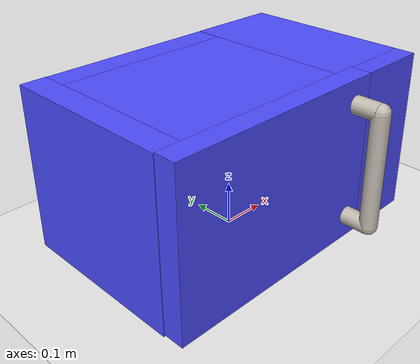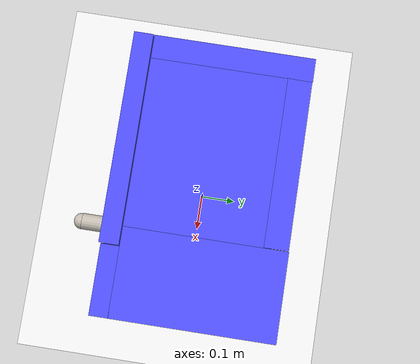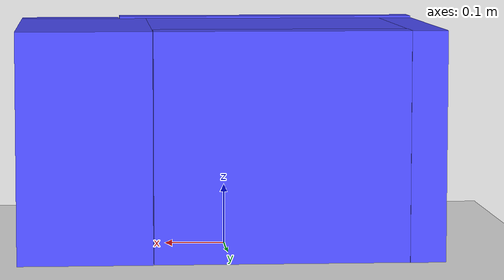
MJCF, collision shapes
<mujoco model="microwave">
    <compiler angle="radian" />
    <include file='../scenes/basic_scene.xml'/>
    <include file="../kitchen/assets/microwave_asset.xml"/>

    <worldbody>

        <body>
		    <include file="../kitchen/assets/microwave_chain.xml"/>
        </body>

    </worldbody>

</mujoco>

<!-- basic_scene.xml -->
<mujocoinclude>
    <asset>
        <texture name="skybox" type="skybox" builtin="gradient" rgb1=".08 .09 .10" rgb2="0 0 0"
               width="800" height="800" mark="random" markrgb=".8 .8 .8"/>

        <texture name="texplane" type="2d" height="1" width="1" file="../scenes/textures/white_marble_tile2.png" />
        <material name='MatPlane' reflectance='0.05' texture="texplane" texrepeat="4 4" texuniform="true"/>
    </asset>

    <visual>
        <quality shadowsize="4048"/>
    </visual>

    <worldbody>
        <light directional='true' diffuse='.3 .3 .3' specular='0.3 0.3 0.3' pos='-1 -1 1' dir='1 1 -1'/>
        <light directional='true' diffuse='.3 .3 .3' specular='0.3 0.3 0.3' pos='1 -1 1' dir='-1 1 -1'/>
        <light directional='true' diffuse='.3 .3 .3' specular='0.3 0.3 0.3' pos='0 1 1' dir='0 -1 -1'/>
        <geom name='floor' pos='0 0 0' size='5 5 .1' conaffinity='1' contype='1' type='plane' material="MatPlane" condim='3'/>
        <site name='xaxis' pos='.5 0 0' size='.005 .5' type='capsule' rgba='1 0 0 .25' euler='0 1.57 0' group='3'/>
        <site name='yaxis' pos='0 .5 0' size='.005 .5' type='capsule' rgba='0 1 0 .25' euler='1.57 0 0' group='3'/>
    </worldbody>
</mujocoinclude>

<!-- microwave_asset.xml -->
<mujocoinclude>

    <compiler inertiafromgeom="auto" inertiagrouprange="4 4" angle="radian"/>

    <asset>
        <mesh file="../kitchen/meshes/micro.stl" name="micro"/>
        <mesh file="../kitchen/meshes/microdoor.stl" name="microdoor"/>
        <mesh file="../kitchen/meshes/microbutton.stl" name="microbutton"/>
        <mesh file="../kitchen/meshes/microfeet.stl" name="microfeet"/>
        <mesh file="../kitchen/meshes/microhandle.stl" name="microhandle"/>
        <mesh file="../kitchen/meshes/microwindow.stl" name="microwindow"/>

        <texture name="T_micro_metal" type="cube" height="1" width="1" file="../kitchen/textures/metal1.png"/>

        <material name="micro_metal" rgba="1 1 1 1" texture="T_micro_metal" texrepeat="3 3" reflectance="1" shininess="1" texuniform="false"/>
        <material name="micro_black" rgba=".2 .2 .2 1" reflectance="1" shininess="1"/>
        <material name="micro_window" rgba=".4 .4 .4 .25" reflectance="1" shininess="1"/>
        <material name="micro_collision_blue" rgba="0.3 0.3 1.0 0.5" shininess="0" specular="0"/>
    </asset>

    <default>
        <default class="microwave">
            <joint damping="2" frictionloss="2" armature=".01" limited="true"/>
            <geom conaffinity="0" contype="0" group="1" material="micro_black" type="mesh"/>
            <default class="micro_collision">
                <geom conaffinity="1" condim="3" contype="0" group="4" margin="0.001" material="micro_collision_blue" solimp=".8 .9 .01" solref=".02 1"/>
            </default>
        </default>
    </default>

</mujocoinclude>

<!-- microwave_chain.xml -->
<mujocoinclude>
    <body name="microroot" childclass="microwave">
        <geom mesh="micro"/>
        <geom material="micro_metal" mesh="microbutton"/>
        <geom material="micro_metal" mesh="microfeet"/>

        <geom class="micro_collision" pos="-0.316 0.023 0.187" size="0.029 0.199 0.187" type="box" mass=".5"/>
        <geom class="micro_collision" pos="0.236 0.023 0.187" size="0.109 0.199 0.187" type="box" mass=".5"/>
        <geom class="micro_collision" pos="-0.081 0.191 0.187" size="0.207 0.03 0.187" type="box" mass=".5"/>
        <geom class="micro_collision" pos="-0.08 -0.007 0.355" size="0.207 0.169 0.019" type="box" mass=".5"/>
        <geom class="micro_collision" pos="-0.08 -0.008 0.024" size="0.207 0.168 0.024" type="box" mass=".5"/>
        <geom class="micro_collision" pos="0.26 -0.197 0.187" size="0.085 0.024 0.187" type="box" mass=".5"/>
        <body name="microdoorroot" pos="-0.345 -0.176 0.192">
            <joint axis="0 0 1" limited="true" name="microjoint" range="-2.094 0"/>
            <geom mesh="microdoor" pos="0.345 0.176 -0.192"/>
            <geom material="micro_window" mesh="microwindow" pos="0.345 0.176 -0.192"/>
            <geom material="micro_metal" pos="0.475 -0.108 0" size="0.02 0.13" type="capsule"/>
            <geom material="micro_metal" euler="1.57 0 0" pos="0.475 -0.075 .13" size="0.02 0.03" type="capsule"/>
            <geom material="micro_metal" euler="1.57 0 0" pos="0.475 -0.075 -.13" size="0.02 0.03" type="capsule"/>

            <geom class="micro_collision" pos="0.475 -0.108 0" size="0.02 0.13" type="capsule" mass="0.020"/>
            <geom class="micro_collision" euler="1.57 0 0" pos="0.475 -0.075 .13" size="0.02 0.03" type="capsule" mass="0.020"/>
            <geom class="micro_collision" euler="1.57 0 0" pos="0.475 -0.075 -.13" size="0.02 0.03" type="capsule" mass="0.020"/>
            <geom class="micro_collision" pos="0.259 -0.026 0" size="0.259 0.024 0.185" type="box" mass="0.20"/>
            <site type="sphere" name="microhandle_site" pos="0.475 -0.108 0" size=".01" group="3" rgba="1 1 0 1"/>
        </body>
    </body>
</mujocoinclude>
